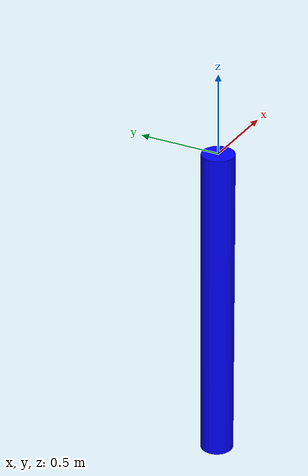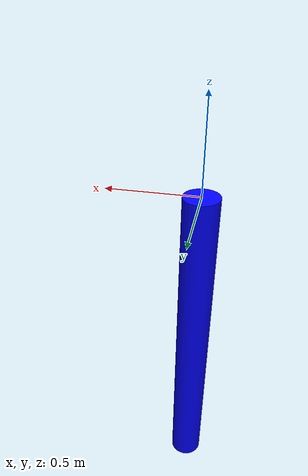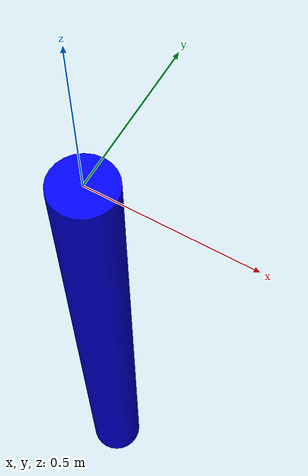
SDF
<?xml version="1.0" ?>
<sdf version="1.8">
    <world name="world_demo">

        <physics name="1ms" type="ignored">
            <max_step_size>.001</max_step_size>
            <real_time_factor>1.0</real_time_factor>
        </physics>

        <plugin filename="libignition-gazebo-physics-system.so" name="ignition::gazebo::systems::Physics">
            <engine>"libignition-physics-dartsim-plugin.so"</engine>
        </plugin>

        <plugin filename="libignition-gazebo-user-commands-system.so" name="ignition::gazebo::systems::UserCommands"/>
        <plugin filename="libignition-gazebo-scene-broadcaster-system.so" name="ignition::gazebo::systems::SceneBroadcaster"/>

        <gui fullscreen="0">

            <!-- 3D scene -->
            <plugin filename="GzScene3D" name="3D View">
                <ignition-gui>
                    <title>3D View</title>
                    <property key="showTitleBar" type="bool">false</property>
                    <property key="state" type="string">docked</property>
                </ignition-gui>

                <engine>ogre</engine>
                <scene>scene</scene>
                <ambient_light>1.0 1.0 1.0</ambient_light>
                <background_color>0.8 0.8 0.8</background_color>
                <camera_pose>-6 0 6 0 0.5 0</camera_pose>
            </plugin>

            <!-- World control -->
            <plugin filename="WorldControl" name="World control">
                <ignition-gui>
                    <title>World control</title>
                    <property key="showTitleBar" type="bool">false</property>
                    <property key="resizable" type="bool">false</property>
                    <property key="height" type="double">72</property>
                    <property key="width" type="double">121</property>
                    <property key="z" type="double">1</property>
                    <property key="state" type="string">floating</property>
                    <anchors target="3D View">
                        <line own="left" target="left"/>
                        <line own="bottom" target="bottom"/>
                    </anchors>
                </ignition-gui>

                <play_pause>true</play_pause>
                <step>true</step>
                <start_paused>true</start_paused>
                <service>/world/world_demo/control</service>
                <stats_topic>/world/world_demo/stats</stats_topic>
            </plugin>

            <!-- World statistics -->
            <plugin filename="WorldStats" name="World stats">
                <ignition-gui>
                    <title>World stats</title>
                    <property key="showTitleBar" type="bool">false</property>
                    <property key="resizable" type="bool">false</property>
                    <property key="height" type="double">110</property>
                    <property key="width" type="double">290</property>
                    <property key="z" type="double">1</property>
                    <property key="state" type="string">floating</property>
                    <anchors target="3D View">
                        <line own="right" target="right"/>
                        <line own="bottom" target="bottom"/>
                    </anchors>
                </ignition-gui>
                <sim_time>true</sim_time>
                <real_time>true</real_time>
                <real_time_factor>true</real_time_factor>
                <iterations>true</iterations>
                <topic>/world/world_demo/stats</topic>
            </plugin>

            <!-- Entity tree -->
            <plugin filename="EntityTree" name="Entity tree"/>
        </gui>

        <light name="sun" type="directional">
            <cast_shadows>true</cast_shadows>
            <pose>0 0 10 0 0 0</pose>
            <diffuse>0.8 0.8 0.8 1</diffuse>
            <specular>0.2 0.2 0.2 1</specular>
            <attenuation>
                <range>1000</range>
                <constant>0.9</constant>
                <linear>0.01</linear>
                <quadratic>0.001</quadratic>
            </attenuation>
            <direction>-0.5 0.1 -0.9</direction>
        </light>

        <model name="Proto Hydraulics Test">
            <pose relative_to="world">0 0 0 0 0 0</pose>
            <!--the pose is relative to the world by default-->

            <link name="Piston">
                <pose relative_to="__model__">0 0 -1 0 0 0</pose>
                <inertial>
                    <mass>910</mass>
                    <inertia>
                        <ixx>10000</ixx>
                        <ixy>0</ixy>
                        <ixz>0</ixz>
                        <iyy>10000</iyy>
                        <iyz>0</iyz>
                        <izz>1000</izz>
                    </inertia>
                </inertial>
                <visual name="visual">
                    <geometry>
                        <cylinder>
                            <radius>.1</radius>
                            <length>2.0</length>
                        </cylinder>
                    </geometry>
                    <!--color-->
                    <material>
                        <ambient>0.0 0.0 1.0 1</ambient>
                        <diffuse>0.0 0.0 1.0 1</diffuse>
                        <specular>0.0 0.0 1.0 1</specular>
                    </material>
                </visual>
            </link>

            <joint name="HydraulicRam" type="prismatic">
                <parent>world</parent>
                <child>Piston</child>
                <pose>0.0 0.0 0.0 0 0 0</pose>
                <axis>
                    <limit>
                        <lower>-20000.0</lower>
                        <upper>20000.0</upper>
                    </limit>
                    <xyz>0.0 0.0 1.0</xyz>
                    <dynamics>
                        <spring_stiffness>18900</spring_stiffness>
                        <spring_reference>0.0</spring_reference>
                        <damping>0.0</damping>
                        <friction>0.0</friction>
                    </dynamics>
                </axis>
            </joint>

            <plugin filename="ProtoElectroHydraulicPTO" name="ignition::gazebo::systems::ProtoElectroHydraulicPTO">
                <PrismaticJointName>HydraulicRam</PrismaticJointName>
                <PistonArea>1.375</PistonArea>
                <HydMotorDisp>0.30</HydMotorDisp>
                <RotorInertia>1</RotorInertia>
            </plugin>
        </model>
    </world>
</sdf>
